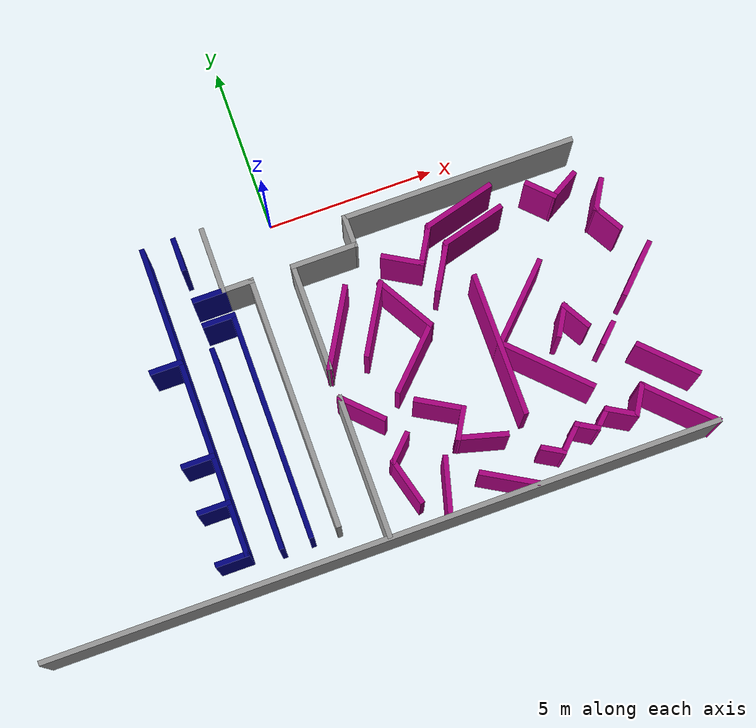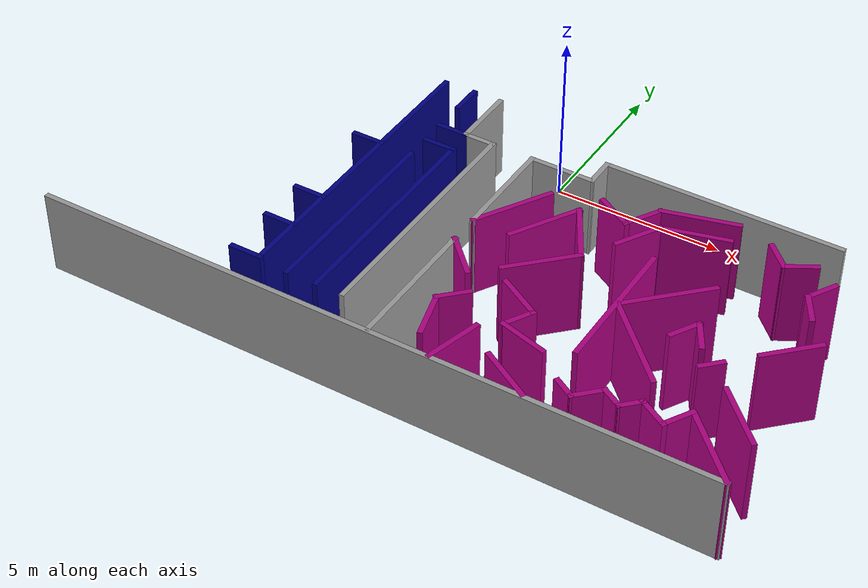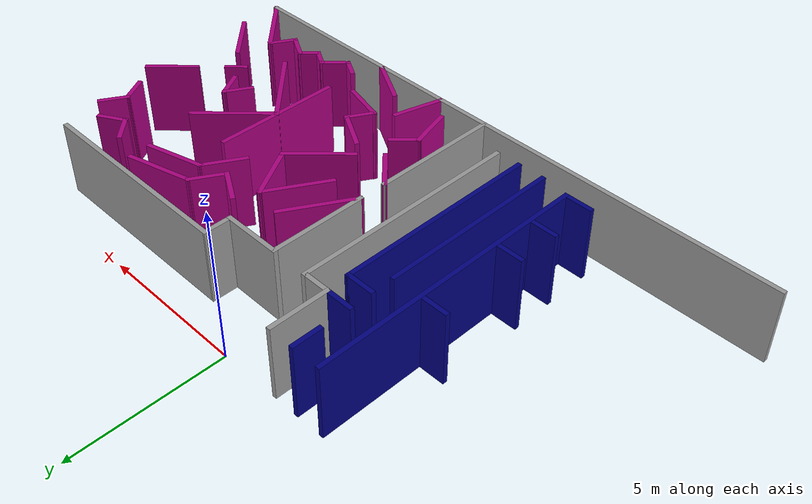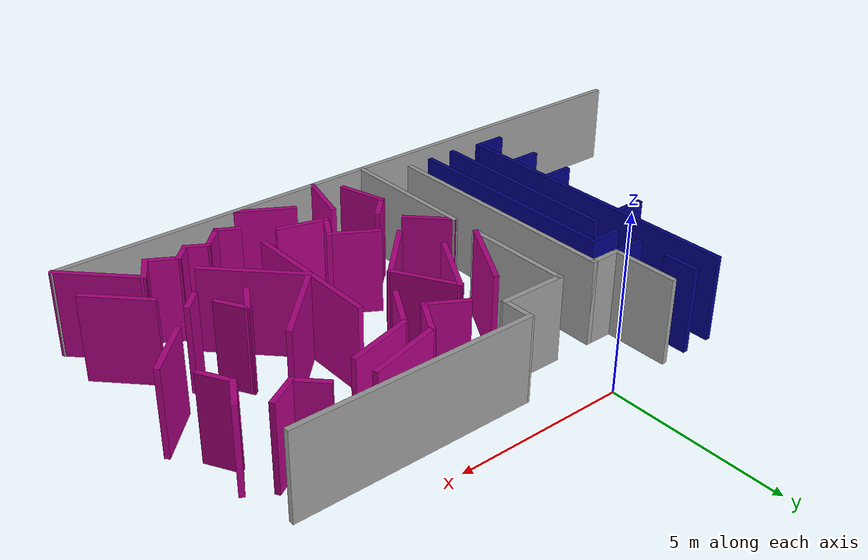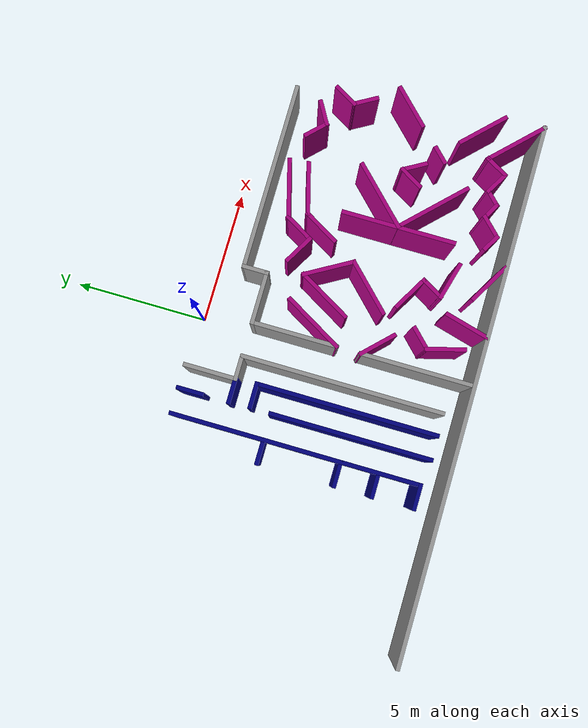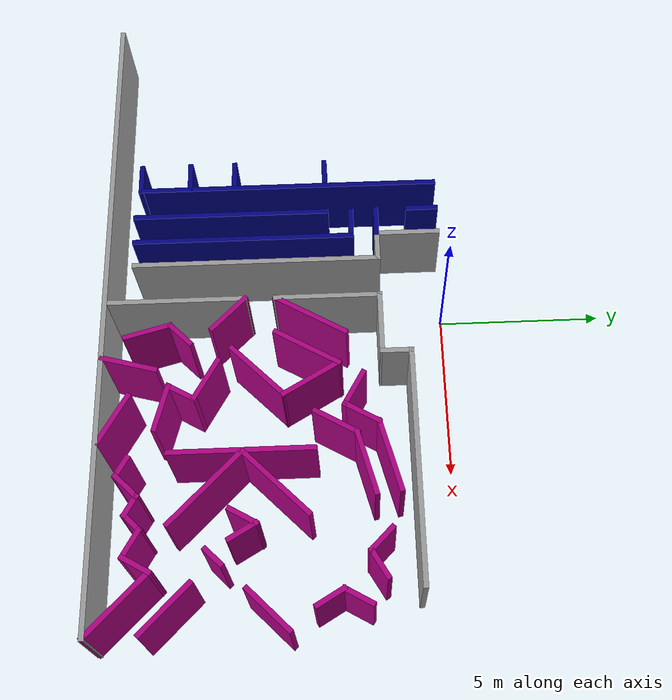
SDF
<sdf version="1.7">
 <model name="labyrinthe-backup">
  <pose>-0.042647 -0.217764 0 0 -0 0</pose>
  <link name="Wall_124">
   <collision name="Wall_124_Collision">
    <geometry><box><size>1 0.15 2.5</size></box></geometry>
    <pose>0 0 1.25 0 -0 0</pose>
   </collision>
   <visual name="Wall_124_Visual">
    <pose>0 0 1.25 0 -0 0</pose>
    <geometry><box><size>1 0.15 2.5</size></box></geometry>
    <material>
     <script><uri>file://media/materials/scripts/gazebo.material</uri><name>Gazebo/Grey</name></script>
     <ambient>0 0 0.498039 1</ambient>
    </material>
    <meta><layer>0</layer></meta>
   </visual>
   <pose>-2.78376 -0.311268 0 0 -0 -1.5708</pose>
  </link>
  <link name="Wall_134">
   <collision name="Wall_134_Collision">
    <geometry><box><size>9.25 0.15 2.5</size></box></geometry>
    <pose>0 0 1.25 0 -0 0</pose>
   </collision>
   <visual name="Wall_134_Visual">
    <pose>0 0 1.25 0 -0 0</pose>
    <geometry><box><size>9.25 0.15 2.5</size></box></geometry>
    <material>
     <script><uri>file://media/materials/scripts/gazebo.material</uri><name>Gazebo/Grey</name></script>
     <ambient>0 0 0.498039 1</ambient>
    </material>
    <meta><layer>0</layer></meta>
   </visual>
   <pose>-3.71826 -4.45266 0 0 -0 -1.5708</pose>
  </link>
  <link name="Wall_138">
   <collision name="Wall_138_Collision">
    <geometry><box><size>1 0.15 2.5</size></box></geometry>
    <pose>0 0 1.25 0 -0 0</pose>
   </collision>
   <visual name="Wall_138_Visual">
    <pose>0 0 1.25 0 -0 0</pose>
    <geometry><box><size>1 0.15 2.5</size></box></geometry>
    <material>
     <script><uri>file://media/materials/scripts/gazebo.material</uri><name>Gazebo/Grey</name></script>
     <ambient>0 0 0.498039 1</ambient>
    </material>
    <meta><layer>0</layer></meta>
   </visual>
   <pose>-2.35877 -1.73627 0 0 -0 3.14159</pose>
  </link>
  <link name="Wall_140">
   <collision name="Wall_140_Collision">
    <geometry><box><size>1 0.15 2.5</size></box></geometry>
    <pose>0 0 1.25 0 -0 0</pose>
   </collision>
   <visual name="Wall_140_Visual">
    <pose>0 0 1.25 0 -0 0</pose>
    <geometry><box><size>1 0.15 2.5</size></box></geometry>
    <material>
     <script><uri>file://media/materials/scripts/gazebo.material</uri><name>Gazebo/Grey</name></script>
     <ambient>0 0 0.498039 1</ambient>
    </material>
    <meta><layer>0</layer></meta>
   </visual>
   <pose>-2.31461 -2.50799 0 0 -0 0</pose>
  </link>
  <link name="Wall_141">
   <collision name="Wall_141_Collision">
    <geometry><box><size>6.75 0.15 2.5</size></box></geometry>
    <pose>0 0 1.25 0 -0 0</pose>
   </collision>
   <visual name="Wall_141_Visual">
    <pose>0 0 1.25 0 -0 0</pose>
    <geometry><box><size>6.75 0.15 2.5</size></box></geometry>
    <material>
     <script><uri>file://media/materials/scripts/gazebo.material</uri><name>Gazebo/Grey</name></script>
     <ambient>0 0 0.498039 1</ambient>
    </material>
    <meta><layer>0</layer></meta>
   </visual>
   <pose>-1.88961 -5.80799 0 0 -0 -1.5708</pose>
  </link>
  <link name="Wall_143">
   <collision name="Wall_143_Collision">
    <geometry><box><size>6 0.15 2.5</size></box></geometry>
    <pose>0 0 1.25 0 -0 0</pose>
   </collision>
   <visual name="Wall_143_Visual">
    <pose>0 0 1.25 0 -0 0</pose>
    <geometry><box><size>6 0.15 2.5</size></box></geometry>
    <material>
     <script><uri>file://media/materials/scripts/gazebo.material</uri><name>Gazebo/Grey</name></script>
     <ambient>0 0 0.498039 1</ambient>
    </material>
    <meta><layer>0</layer></meta>
   </visual>
   <pose>-2.76606 -6.20004 0 0 -0 -1.5708</pose>
  </link>
  <link name="Wall_154">
   <collision name="Wall_154_Collision">
    <geometry><box><size>1 0.15 2.5</size></box></geometry>
    <pose>0 0 1.25 0 -0 0</pose>
   </collision>
   <visual name="Wall_154_Visual">
    <pose>0 0 1.25 0 -0 0</pose>
    <geometry><box><size>1 0.15 2.5</size></box></geometry>
    <material>
     <script><uri>file://media/materials/scripts/gazebo.material</uri><name>Gazebo/Grey</name></script>
     <ambient>0 0 0.498039 1</ambient>
    </material>
    <meta><layer>0</layer></meta>
   </visual>
   <pose>-4.14326 -3.28826 0 0 -0 3.14159</pose>
  </link>
  <link name="Wall_162">
   <collision name="Wall_162_Collision">
    <geometry><box><size>1 0.15 2.5</size></box></geometry>
    <pose>0 0 1.25 0 -0 0</pose>
   </collision>
   <visual name="Wall_162_Visual">
    <pose>0 0 1.25 0 -0 0</pose>
    <geometry><box><size>1 0.15 2.5</size></box></geometry>
    <material>
     <script><uri>file://media/materials/scripts/gazebo.material</uri><name>Gazebo/Grey</name></script>
     <ambient>0 0 0.498039 1</ambient>
    </material>
    <meta><layer>0</layer></meta>
   </visual>
   <pose>-4.15649 -6.10519 0 0 -0 3.14159</pose>
  </link>
  <link name="Wall_167">
   <collision name="Wall_167_Collision">
    <geometry><box><size>1 0.15 2.5</size></box></geometry>
    <pose>0 0 1.25 0 -0 0</pose>
   </collision>
   <visual name="Wall_167_Visual">
    <pose>0 0 1.25 0 -0 0</pose>
    <geometry><box><size>1 0.15 2.5</size></box></geometry>
    <material>
     <script><uri>file://media/materials/scripts/gazebo.material</uri><name>Gazebo/Grey</name></script>
     <ambient>0 0 0.498039 1</ambient>
    </material>
    <meta><layer>0</layer></meta>
   </visual>
   <pose>-4.15649 -7.48059 0 0 -0 3.14159</pose>
  </link>
  <link name="Wall_17">
   <collision name="Wall_17_Collision">
    <geometry><box><size>20 0.15 2.5</size></box></geometry>
    <pose>0 0 1.25 0 -0 0</pose>
   </collision>
   <visual name="Wall_17_Visual">
    <pose>0 0 1.25 0 -0 0</pose>
    <geometry><box><size>20 0.15 2.5</size></box></geometry>
    <material>
     <script><uri>file://media/materials/scripts/gazebo.material</uri><name>Gazebo/Grey</name></script>
     <ambient>0 0 0 1</ambient>
    </material>
    <meta><layer>0</layer></meta>
   </visual>
   <pose>-0.030043 -9.90947 0 0 -0 3.14159</pose>
  </link>
  <link name="Wall_171">
   <collision name="Wall_171_Collision">
    <geometry><box><size>1 0.15 2.5</size></box></geometry>
    <pose>0 0 1.25 0 -0 0</pose>
   </collision>
   <visual name="Wall_171_Visual">
    <pose>0 0 1.25 0 -0 0</pose>
    <geometry><box><size>1 0.15 2.5</size></box></geometry>
    <material>
     <script><uri>file://media/materials/scripts/gazebo.material</uri><name>Gazebo/Grey</name></script>
     <ambient>0 0 0.498039 1</ambient>
    </material>
    <meta><layer>0</layer></meta>
   </visual>
   <pose>-4.14326 -9.00266 0 0 -0 3.14159</pose>
  </link>
  <link name="Wall_199">
   <collision name="Wall_199_Collision">
    <geometry><box><size>3.25 0.15 2.5</size></box></geometry>
    <pose>0 0 1.25 0 -0 0</pose>
   </collision>
   <visual name="Wall_199_Visual">
    <pose>0 0 1.25 0 -0 0</pose>
    <geometry><box><size>3.25 0.15 2.5</size></box></geometry>
    <material>
     <script><uri>file://media/materials/scripts/gazebo.material</uri><name>Gazebo/Grey</name></script>
     <ambient>0 0 0 1</ambient>
    </material>
    <meta><layer>0</layer></meta>
   </visual>
   <pose>0.166235 -3.28624 0 0 -0 -1.5708</pose>
  </link>
  <link name="Wall_201">
   <collision name="Wall_201_Collision">
    <geometry><box><size>4.25 0.15 2.5</size></box></geometry>
    <pose>0 0 1.25 0 -0 0</pose>
   </collision>
   <visual name="Wall_201_Visual">
    <pose>0 0 1.25 0 -0 0</pose>
    <geometry><box><size>4.25 0.15 2.5</size></box></geometry>
    <material>
     <script><uri>file://media/materials/scripts/gazebo.material</uri><name>Gazebo/Grey</name></script>
     <ambient>0 0 0 1</ambient>
    </material>
    <meta><layer>0</layer></meta>
   </visual>
   <pose>0.156663 -7.79811 0 0 -0 -1.5708</pose>
  </link>
  <link name="Wall_203">
   <collision name="Wall_203_Collision">
    <geometry><box><size>2.5 0.15 2.5</size></box></geometry>
    <pose>0 0 1.25 0 -0 0</pose>
   </collision>
   <visual name="Wall_203_Visual">
    <pose>0 0 1.25 0 -0 0</pose>
    <geometry><box><size>2.5 0.15 2.5</size></box></geometry>
    <material>
     <script><uri>file://media/materials/scripts/gazebo.material</uri><name>Gazebo/Grey</name></script>
     <ambient>0.666667 0 0.498039 1</ambient>
    </material>
    <meta><layer>0</layer></meta>
   </visual>
   <pose>0.753735 -3.81866 0 0 -0 1.0472</pose>
  </link>
  <link name="Wall_205">
   <collision name="Wall_205_Collision">
    <geometry><box><size>1.5 0.15 2.5</size></box></geometry>
    <pose>0 0 1.25 0 -0 0</pose>
   </collision>
   <visual name="Wall_205_Visual">
    <pose>0 0 1.25 0 -0 0</pose>
    <geometry><box><size>1.5 0.15 2.5</size></box></geometry>
    <material>
     <script><uri>file://media/materials/scripts/gazebo.material</uri><name>Gazebo/Grey</name></script>
     <ambient>0.666667 0 0.498039 1</ambient>
    </material>
    <meta><layer>0</layer></meta>
   </visual>
   <pose>0.63396 -6.22541 0 0 -0 -0.785398</pose>
  </link>
  <link name="Wall_207">
   <collision name="Wall_207_Collision">
    <geometry><box><size>2.25 0.15 2.5</size></box></geometry>
    <pose>0 0 1.25 0 -0 0</pose>
   </collision>
   <visual name="Wall_207_Visual">
    <pose>0 0 1.25 0 -0 0</pose>
    <geometry><box><size>2.25 0.15 2.5</size></box></geometry>
    <material>
     <script><uri>file://media/materials/scripts/gazebo.material</uri><name>Gazebo/Grey</name></script>
     <ambient>0.666667 0 0.498039 1</ambient>
    </material>
    <meta><layer>0</layer></meta>
   </visual>
   <pose>1.80579 -3.92626 0 0 -0 1.0472</pose>
  </link>
  <link name="Wall_208">
   <collision name="Wall_208_Collision">
    <geometry><box><size>2 0.15 2.5</size></box></geometry>
    <pose>0 0 1.25 0 -0 0</pose>
   </collision>
   <visual name="Wall_208_Visual">
    <pose>0 0 1.25 0 -0 0</pose>
    <geometry><box><size>2 0.15 2.5</size></box></geometry>
    <material>
     <script><uri>file://media/materials/scripts/gazebo.material</uri><name>Gazebo/Grey</name></script>
     <ambient>0.666667 0 0.498039 1</ambient>
    </material>
    <meta><layer>0</layer></meta>
   </visual>
   <pose>2.79329 -3.81801 0 0 -0 -1.0472</pose>
  </link>
  <link name="Wall_209">
   <collision name="Wall_209_Collision">
    <geometry><box><size>2.25 0.15 2.5</size></box></geometry>
    <pose>0 0 1.25 0 -0 0</pose>
   </collision>
   <visual name="Wall_209_Visual">
    <pose>0 0 1.25 0 -0 0</pose>
    <geometry><box><size>2.25 0.15 2.5</size></box></geometry>
    <material>
     <script><uri>file://media/materials/scripts/gazebo.material</uri><name>Gazebo/Grey</name></script>
     <ambient>0.666667 0 0.498039 1</ambient>
    </material>
    <meta><layer>0</layer></meta>
   </visual>
   <pose>2.51333 -5.36154 0 0 -0 -2.35619</pose>
  </link>
  <link name="Wall_211">
   <collision name="Wall_211_Collision">
    <geometry><box><size>1.25 0.15 2.5</size></box></geometry>
    <pose>0 0 1.25 0 -0 0</pose>
   </collision>
   <visual name="Wall_211_Visual">
    <pose>0 0 1.25 0 -0 0</pose>
    <geometry><box><size>1.25 0.15 2.5</size></box></geometry>
    <material>
     <script><uri>file://media/materials/scripts/gazebo.material</uri><name>Gazebo/Grey</name></script>
     <ambient>0.666667 0 0.498039 1</ambient>
    </material>
    <meta><layer>0</layer></meta>
   </visual>
   <pose>3.14573 -2.59784 0 0 -0 -0.523599</pose>
  </link>
  <link name="Wall_212">
   <collision name="Wall_212_Collision">
    <geometry><box><size>1.25 0.15 2.5</size></box></geometry>
    <pose>0 0 1.25 0 -0 0</pose>
   </collision>
   <visual name="Wall_212_Visual">
    <pose>0 0 1.25 0 -0 0</pose>
    <geometry><box><size>1.25 0.15 2.5</size></box></geometry>
    <material>
     <script><uri>file://media/materials/scripts/gazebo.material</uri><name>Gazebo/Grey</name></script>
     <ambient>0.666667 0 0.498039 1</ambient>
    </material>
    <meta><layer>0</layer></meta>
   </visual>
   <pose>3.89704 -2.39652 0 0 -0 1.0472</pose>
  </link>
  <link name="Wall_213">
   <collision name="Wall_213_Collision">
    <geometry><box><size>2.25 0.15 2.5</size></box></geometry>
    <pose>0 0 1.25 0 -0 0</pose>
   </collision>
   <visual name="Wall_213_Visual">
    <pose>0 0 1.25 0 -0 0</pose>
    <geometry><box><size>2.25 0.15 2.5</size></box></geometry>
    <material>
     <script><uri>file://media/materials/scripts/gazebo.material</uri><name>Gazebo/Grey</name></script>
     <ambient>0.666667 0 0.498039 1</ambient>
    </material>
    <meta><layer>0</layer></meta>
   </visual>
   <pose>5.18626 -1.64845 0 0 -0 0.261799</pose>
  </link>
  <link name="Wall_215">
   <collision name="Wall_215_Collision">
    <geometry><box><size>1.5 0.15 2.5</size></box></geometry>
    <pose>0 0 1.25 0 -0 0</pose>
   </collision>
   <visual name="Wall_215_Visual">
    <pose>0 0 1.25 0 -0 0</pose>
    <geometry><box><size>1.5 0.15 2.5</size></box></geometry>
    <material>
     <script><uri>file://media/materials/scripts/gazebo.material</uri><name>Gazebo/Grey</name></script>
     <ambient>0.666667 0 0.498039 1</ambient>
    </material>
    <meta><layer>0</layer></meta>
   </visual>
   <pose>4.14426 -3.14012 0 0 -0 1.0472</pose>
  </link>
  <link name="Wall_216">
   <collision name="Wall_216_Collision">
    <geometry><box><size>2 0.15 2.5</size></box></geometry>
    <pose>0 0 1.25 0 -0 0</pose>
   </collision>
   <visual name="Wall_216_Visual">
    <pose>0 0 1.25 0 -0 0</pose>
    <geometry><box><size>2 0.15 2.5</size></box></geometry>
    <material>
     <script><uri>file://media/materials/scripts/gazebo.material</uri><name>Gazebo/Grey</name></script>
     <ambient>0.666667 0 0.498039 1</ambient>
    </material>
    <meta><layer>0</layer></meta>
   </visual>
   <pose>5.37524 -2.31615 0 0 -0 0.261799</pose>
  </link>
  <link name="Wall_218">
   <collision name="Wall_218_Collision">
    <geometry><box><size>1 0.15 2.5</size></box></geometry>
    <pose>0 0 1.25 0 -0 0</pose>
   </collision>
   <visual name="Wall_218_Visual">
    <pose>0 0 1.25 0 -0 0</pose>
    <geometry><box><size>1 0.15 2.5</size></box></geometry>
    <material>
     <script><uri>file://media/materials/scripts/gazebo.material</uri><name>Gazebo/Grey</name></script>
     <ambient>0.666667 0 0.498039 1</ambient>
    </material>
    <meta><layer>0</layer></meta>
   </visual>
   <pose>7.55901 -1.98856 0 0 -0 -0.785398</pose>
  </link>
  <link name="Wall_219">
   <collision name="Wall_219_Collision">
    <geometry><box><size>1 0.15 2.5</size></box></geometry>
    <pose>0 0 1.25 0 -0 0</pose>
   </collision>
   <visual name="Wall_219_Visual">
    <pose>0 0 1.25 0 -0 0</pose>
    <geometry><box><size>1 0.15 2.5</size></box></geometry>
    <material>
     <script><uri>file://media/materials/scripts/gazebo.material</uri><name>Gazebo/Grey</name></script>
     <ambient>0.666667 0 0.498039 1</ambient>
    </material>
    <meta><layer>0</layer></meta>
   </visual>
   <pose>8.22759 -2.07658 0 0 -0 0.523599</pose>
  </link>
  <link name="Wall_221">
   <collision name="Wall_221_Collision">
    <geometry><box><size>1 0.15 2.5</size></box></geometry>
    <pose>0 0 1.25 0 -0 0</pose>
   </collision>
   <visual name="Wall_221_Visual">
    <pose>0 0 1.25 0 -0 0</pose>
    <geometry><box><size>1 0.15 2.5</size></box></geometry>
    <material>
     <script><uri>file://media/materials/scripts/gazebo.material</uri><name>Gazebo/Grey</name></script>
     <ambient>0.666667 0 0.498039 1</ambient>
    </material>
    <meta><layer>0</layer></meta>
   </visual>
   <pose>9.06941 -2.67767 0 0 -0 -2.0944</pose>
  </link>
  <link name="Wall_222">
   <collision name="Wall_222_Collision">
    <geometry><box><size>1 0.15 2.5</size></box></geometry>
    <pose>0 0 1.25 0 -0 0</pose>
   </collision>
   <visual name="Wall_222_Visual">
    <pose>0 0 1.25 0 -0 0</pose>
    <geometry><box><size>1 0.15 2.5</size></box></geometry>
    <material>
     <script><uri>file://media/materials/scripts/gazebo.material</uri><name>Gazebo/Grey</name></script>
     <ambient>0.666667 0 0.498039 1</ambient>
    </material>
    <meta><layer>0</layer></meta>
   </visual>
   <pose>9.06941 -3.41379 0 0 -0 -1.0472</pose>
  </link>
  <link name="Wall_224">
   <collision name="Wall_224_Collision">
    <geometry><box><size>1.5 0.15 2.5</size></box></geometry>
    <pose>0 0 1.25 0 -0 0</pose>
   </collision>
   <visual name="Wall_224_Visual">
    <pose>0 0 1.25 0 -0 0</pose>
    <geometry><box><size>1.5 0.15 2.5</size></box></geometry>
    <material>
     <script><uri>file://media/materials/scripts/gazebo.material</uri><name>Gazebo/Grey</name></script>
     <ambient>0.666667 0 0.498039 1</ambient>
    </material>
    <meta><layer>0</layer></meta>
   </visual>
   <pose>2.72498 -6.85266 0 0 -0 -0.523599</pose>
  </link>
  <link name="Wall_225">
   <collision name="Wall_225_Collision">
    <geometry><box><size>1 0.15 2.5</size></box></geometry>
    <pose>0 0 1.25 0 -0 0</pose>
   </collision>
   <visual name="Wall_225_Visual">
    <pose>0 0 1.25 0 -0 0</pose>
    <geometry><box><size>1 0.15 2.5</size></box></geometry>
    <material>
     <script><uri>file://media/materials/scripts/gazebo.material</uri><name>Gazebo/Grey</name></script>
     <ambient>0.666667 0 0.498039 1</ambient>
    </material>
    <meta><layer>0</layer></meta>
   </visual>
   <pose>3.09705 -7.55822 0 0 -0 -2.0944</pose>
  </link>
  <link name="Wall_226">
   <collision name="Wall_226_Collision">
    <geometry><box><size>1.5 0.15 2.5</size></box></geometry>
    <pose>0 0 1.25 0 -0 0</pose>
   </collision>
   <visual name="Wall_226_Visual">
    <pose>0 0 1.25 0 -0 0</pose>
    <geometry><box><size>1.5 0.15 2.5</size></box></geometry>
    <material>
     <script><uri>file://media/materials/scripts/gazebo.material</uri><name>Gazebo/Grey</name></script>
     <ambient>0.666667 0 0.498039 1</ambient>
    </material>
    <meta><layer>0</layer></meta>
   </visual>
   <pose>3.53655 -8.10099 0 0 -0 -0.261799</pose>
  </link>
  <link name="Wall_228">
   <collision name="Wall_228_Collision">
    <geometry><box><size>1 0.15 2.5</size></box></geometry>
    <pose>0 0 1.25 0 -0 0</pose>
   </collision>
   <visual name="Wall_228_Visual">
    <pose>0 0 1.25 0 -0 0</pose>
    <geometry><box><size>1 0.15 2.5</size></box></geometry>
    <material>
     <script><uri>file://media/materials/scripts/gazebo.material</uri><name>Gazebo/Grey</name></script>
     <ambient>0.666667 0 0.498039 1</ambient>
    </material>
    <meta><layer>0</layer></meta>
   </visual>
   <pose>1.25799 -7.63563 0 0 -0 -2.35619</pose>
  </link>
  <link name="Wall_229">
   <collision name="Wall_229_Collision">
    <geometry><box><size>1.5 0.15 2.5</size></box></geometry>
    <pose>0 0 1.25 0 -0 0</pose>
   </collision>
   <visual name="Wall_229_Visual">
    <pose>0 0 1.25 0 -0 0</pose>
    <geometry><box><size>1.5 0.15 2.5</size></box></geometry>
    <material>
     <script><uri>file://media/materials/scripts/gazebo.material</uri><name>Gazebo/Grey</name></script>
     <ambient>0.666667 0 0.498039 1</ambient>
    </material>
    <meta><layer>0</layer></meta>
   </visual>
   <pose>1.13217 -8.58815 0 0 -0 -1.309</pose>
  </link>
  <link name="Wall_231">
   <collision name="Wall_231_Collision">
    <geometry><box><size>1.75 0.15 2.5</size></box></geometry>
    <pose>0 0 1.25 0 -0 0</pose>
   </collision>
   <visual name="Wall_231_Visual">
    <pose>0 0 1.25 0 -0 0</pose>
    <geometry><box><size>1.75 0.15 2.5</size></box></geometry>
    <material>
     <script><uri>file://media/materials/scripts/gazebo.material</uri><name>Gazebo/Grey</name></script>
     <ambient>0.666667 0 0.498039 1</ambient>
    </material>
    <meta><layer>0</layer></meta>
   </visual>
   <pose>2.14909 -9.10157 0 0 -0 1.309</pose>
  </link>
  <link name="Wall_233">
   <collision name="Wall_233_Collision">
    <geometry><box><size>1.75 0.15 2.5</size></box></geometry>
    <pose>0 0 1.25 0 -0 0</pose>
   </collision>
   <visual name="Wall_233_Visual">
    <pose>0 0 1.25 0 -0 0</pose>
    <geometry><box><size>1.75 0.15 2.5</size></box></geometry>
    <material>
     <script><uri>file://media/materials/scripts/gazebo.material</uri><name>Gazebo/Grey</name></script>
     <ambient>0.666667 0 0.498039 1</ambient>
    </material>
    <meta><layer>0</layer></meta>
   </visual>
   <pose>3.84132 -9.46109 0 0 -0 2.61799</pose>
  </link>
  <link name="Wall_235">
   <collision name="Wall_235_Collision">
    <geometry><box><size>2.5 0.15 2.5</size></box></geometry>
    <pose>0 0 1.25 0 -0 0</pose>
   </collision>
   <visual name="Wall_235_Visual">
    <pose>0 0 1.25 0 -0 0</pose>
    <geometry><box><size>2.5 0.15 2.5</size></box></geometry>
    <material>
     <script><uri>file://media/materials/scripts/gazebo.material</uri><name>Gazebo/Grey</name></script>
     <ambient>0.666667 0 0.498039 1</ambient>
    </material>
    <meta><layer>0</layer></meta>
   </visual>
   <pose>9.06411 -9.07862 0 0 -0 2.35619</pose>
  </link>
  <link name="Wall_236">
   <collision name="Wall_236_Collision">
    <geometry><box><size>1 0.15 2.5</size></box></geometry>
    <pose>0 0 1.25 0 -0 0</pose>
   </collision>
   <visual name="Wall_236_Visual">
    <pose>0 0 1.25 0 -0 0</pose>
    <geometry><box><size>1 0.15 2.5</size></box></geometry>
    <material>
     <script><uri>file://media/materials/scripts/gazebo.material</uri><name>Gazebo/Grey</name></script>
     <ambient>0.666667 0 0.498039 1</ambient>
    </material>
    <meta><layer>0</layer></meta>
   </visual>
   <pose>8.02076 -8.61583 0 0 -0 -2.0944</pose>
  </link>
  <link name="Wall_237">
   <collision name="Wall_237_Collision">
    <geometry><box><size>1 0.15 2.5</size></box></geometry>
    <pose>0 0 1.25 0 -0 0</pose>
   </collision>
   <visual name="Wall_237_Visual">
    <pose>0 0 1.25 0 -0 0</pose>
    <geometry><box><size>1 0.15 2.5</size></box></geometry>
    <material>
     <script><uri>file://media/materials/scripts/gazebo.material</uri><name>Gazebo/Grey</name></script>
     <ambient>0.666667 0 0.498039 1</ambient>
    </material>
    <meta><layer>0</layer></meta>
   </visual>
   <pose>7.4402 -8.77139 0 0 -0 2.61799</pose>
  </link>
  <link name="Wall_238">
   <collision name="Wall_238_Collision">
    <geometry><box><size>0.75 0.15 2.5</size></box></geometry>
    <pose>0 0 1.25 0 -0 0</pose>
   </collision>
   <visual name="Wall_238_Visual">
    <pose>0 0 1.25 0 -0 0</pose>
    <geometry><box><size>0.75 0.15 2.5</size></box></geometry>
    <material>
     <script><uri>file://media/materials/scripts/gazebo.material</uri><name>Gazebo/Grey</name></script>
     <ambient>0.666667 0 0.498039 1</ambient>
    </material>
    <meta><layer>0</layer></meta>
   </visual>
   <pose>6.86 -8.77102 0 0 -0 -2.35619</pose>
  </link>
  <link name="Wall_239">
   <collision name="Wall_239_Collision">
    <geometry><box><size>0.75 0.15 2.5</size></box></geometry>
    <pose>0 0 1.25 0 -0 0</pose>
   </collision>
   <visual name="Wall_239_Visual">
    <pose>0 0 1.25 0 -0 0</pose>
    <geometry><box><size>0.75 0.15 2.5</size></box></geometry>
    <material>
     <script><uri>file://media/materials/scripts/gazebo.material</uri><name>Gazebo/Grey</name></script>
     <ambient>0.666667 0 0.498039 1</ambient>
    </material>
    <meta><layer>0</layer></meta>
   </visual>
   <pose>6.38806 -8.83315 0 0 -0 2.61799</pose>
  </link>
  <link name="Wall_240">
   <collision name="Wall_240_Collision">
    <geometry><box><size>1 0.15 2.5</size></box></geometry>
    <pose>0 0 1.25 0 -0 0</pose>
   </collision>
   <visual name="Wall_240_Visual">
    <pose>0 0 1.25 0 -0 0</pose>
    <geometry><box><size>1 0.15 2.5</size></box></geometry>
    <material>
     <script><uri>file://media/materials/scripts/gazebo.material</uri><name>Gazebo/Grey</name></script>
     <ambient>0.666667 0 0.498039 1</ambient>
    </material>
    <meta><layer>0</layer></meta>
   </visual>
   <pose>5.82773 -8.98367 0 0 -0 -2.35619</pose>
  </link>
  <link name="Wall_241">
   <collision name="Wall_241_Collision">
    <geometry><box><size>0.75 0.15 2.5</size></box></geometry>
    <pose>0 0 1.25 0 -0 0</pose>
   </collision>
   <visual name="Wall_241_Visual">
    <pose>0 0 1.25 0 -0 0</pose>
    <geometry><box><size>0.75 0.15 2.5</size></box></geometry>
    <material>
     <script><uri>file://media/materials/scripts/gazebo.material</uri><name>Gazebo/Grey</name></script>
     <ambient>0.666667 0 0.498039 1</ambient>
    </material>
    <meta><layer>0</layer></meta>
   </visual>
   <pose>5.26741 -9.13419 0 0 -0 2.61799</pose>
  </link>
  <link name="Wall_243">
   <collision name="Wall_243_Collision">
    <geometry><box><size>1.75 0.15 2.5</size></box></geometry>
    <pose>0 0 1.25 0 -0 0</pose>
   </collision>
   <visual name="Wall_243_Visual">
    <pose>0 0 1.25 0 -0 0</pose>
    <geometry><box><size>1.75 0.15 2.5</size></box></geometry>
    <material>
     <script><uri>file://media/materials/scripts/gazebo.material</uri><name>Gazebo/Grey</name></script>
     <ambient>0.666667 0 0.498039 1</ambient>
    </material>
    <meta><layer>0</layer></meta>
   </visual>
   <pose>9.32458 -5.07065 0 0 -0 -2.35619</pose>
  </link>
  <link name="Wall_245">
   <collision name="Wall_245_Collision">
    <geometry><box><size>2 0.15 2.5</size></box></geometry>
    <pose>0 0 1.25 0 -0 0</pose>
   </collision>
   <visual name="Wall_245_Visual">
    <pose>0 0 1.25 0 -0 0</pose>
    <geometry><box><size>2 0.15 2.5</size></box></geometry>
    <material>
     <script><uri>file://media/materials/scripts/gazebo.material</uri><name>Gazebo/Grey</name></script>
     <ambient>0.666667 0 0.498039 1</ambient>
    </material>
    <meta><layer>0</layer></meta>
   </visual>
   <pose>9.20974 -7.79194 0 0 -0 2.35619</pose>
  </link>
  <link name="Wall_247">
   <collision name="Wall_247_Collision">
    <geometry><box><size>4.25 0.15 2.5</size></box></geometry>
    <pose>0 0 1.25 0 -0 0</pose>
   </collision>
   <visual name="Wall_247_Visual">
    <pose>0 0 1.25 0 -0 0</pose>
    <geometry><box><size>4.25 0.15 2.5</size></box></geometry>
    <material>
     <script><uri>file://media/materials/scripts/gazebo.material</uri><name>Gazebo/Grey</name></script>
     <ambient>0.666667 0 0.498039 1</ambient>
    </material>
    <meta><layer>0</layer></meta>
   </visual>
   <pose>4.90444 -5.81436 0 0 -0 -1.5708</pose>
  </link>
  <link name="Wall_249">
   <collision name="Wall_249_Collision">
    <geometry><box><size>2.75 0.15 2.5</size></box></geometry>
    <pose>0 0 1.25 0 -0 0</pose>
   </collision>
   <visual name="Wall_249_Visual">
    <pose>0 0 1.25 0 -0 0</pose>
    <geometry><box><size>2.75 0.15 2.5</size></box></geometry>
    <material>
     <script><uri>file://media/materials/scripts/gazebo.material</uri><name>Gazebo/Grey</name></script>
     <ambient>0.666667 0 0.498039 1</ambient>
    </material>
    <meta><layer>0</layer></meta>
   </visual>
   <pose>5.85013 -4.86855 0 0 -0 0.785398</pose>
  </link>
  <link name="Wall_251">
   <collision name="Wall_251_Collision">
    <geometry><box><size>3 0.15 2.5</size></box></geometry>
    <pose>0 0 1.25 0 -0 0</pose>
   </collision>
   <visual name="Wall_251_Visual">
    <pose>0 0 1.25 0 -0 0</pose>
    <geometry><box><size>3 0.15 2.5</size></box></geometry>
    <material>
     <script><uri>file://media/materials/scripts/gazebo.material</uri><name>Gazebo/Grey</name></script>
     <ambient>0.666667 0 0.498039 1</ambient>
    </material>
    <meta><layer>0</layer></meta>
   </visual>
   <pose>5.93851 -6.79542 0 0 -0 -0.785398</pose>
  </link>
  <link name="Wall_254">
   <collision name="Wall_254_Collision">
    <geometry><box><size>1 0.15 2.5</size></box></geometry>
    <pose>0 0 1.25 0 -0 0</pose>
   </collision>
   <visual name="Wall_254_Visual">
    <pose>0 0 1.25 0 -0 0</pose>
    <geometry><box><size>1 0.15 2.5</size></box></geometry>
    <material>
     <script><uri>file://media/materials/scripts/gazebo.material</uri><name>Gazebo/Grey</name></script>
     <ambient>0.666667 0 0.498039 1</ambient>
    </material>
    <meta><layer>0</layer></meta>
   </visual>
   <pose>6.78149 -5.7591 0 0 -0 -2.0944</pose>
  </link>
  <link name="Wall_256">
   <collision name="Wall_256_Collision">
    <geometry><box><size>1 0.15 2.5</size></box></geometry>
    <pose>0 0 1.25 0 -0 0</pose>
   </collision>
   <visual name="Wall_256_Visual">
    <pose>0 0 1.25 0 -0 0</pose>
    <geometry><box><size>1 0.15 2.5</size></box></geometry>
    <material>
     <script><uri>file://media/materials/scripts/gazebo.material</uri><name>Gazebo/Grey</name></script>
     <ambient>0.666667 0 0.498039 1</ambient>
    </material>
    <meta><layer>0</layer></meta>
   </visual>
   <pose>7.20649 -5.7591 0 0 -0 -1.0472</pose>
  </link>
  <link name="Wall_258">
   <collision name="Wall_258_Collision">
    <geometry><box><size>0.75 0.15 2.5</size></box></geometry>
    <pose>0 0 1.25 0 -0 0</pose>
   </collision>
   <visual name="Wall_258_Visual">
    <pose>0 0 1.25 0 -0 0</pose>
    <geometry><box><size>0.75 0.15 2.5</size></box></geometry>
    <material>
     <script><uri>file://media/materials/scripts/gazebo.material</uri><name>Gazebo/Grey</name></script>
     <ambient>0.666667 0 0.498039 1</ambient>
    </material>
    <meta><layer>0</layer></meta>
   </visual>
   <pose>7.87953 -6.54214 0 0 -0 -2.35619</pose>
  </link>
  <link name="Wall_32">
   <collision name="Wall_32_Collision">
    <geometry><box><size>1 0.15 2.5</size></box></geometry>
    <pose>0 0 1.25 0 -0 0</pose>
   </collision>
   <visual name="Wall_32_Visual">
    <pose>0 0 1.25 0 -0 0</pose>
    <geometry><box><size>1 0.15 2.5</size></box></geometry>
    <material>
     <script><uri>file://media/materials/scripts/gazebo.material</uri><name>Gazebo/Grey</name></script>
     <ambient>0 0 0 1</ambient>
    </material>
    <meta><layer>0</layer></meta>
   </visual>
   <pose>-1.50876 -1.73627 0 0 -0 0</pose>
  </link>
  <link name="Wall_38">
   <collision name="Wall_38_Collision">
    <geometry><box><size>2 0.15 2.5</size></box></geometry>
    <pose>0 0 1.25 0 -0 0</pose>
   </collision>
   <visual name="Wall_38_Visual">
    <pose>0 0 1.25 0 -0 0</pose>
    <geometry><box><size>2 0.15 2.5</size></box></geometry>
    <material>
     <script><uri>file://media/materials/scripts/gazebo.material</uri><name>Gazebo/Grey</name></script>
     <ambient>0 0 0 1</ambient>
    </material>
    <meta><layer>0</layer></meta>
   </visual>
   <pose>-1.93376 -0.811268 0 0 -0 1.5708</pose>
  </link>
  <link name="Wall_43">
   <collision name="Wall_43_Collision">
    <geometry><box><size>1 0.15 2.5</size></box></geometry>
    <pose>0 0 1.25 0 -0 0</pose>
   </collision>
   <visual name="Wall_43_Visual">
    <pose>0 0 1.25 0 -0 0</pose>
    <geometry><box><size>1 0.15 2.5</size></box></geometry>
    <material>
     <script><uri>file://media/materials/scripts/gazebo.material</uri><name>Gazebo/Grey</name></script>
     <ambient>0 0 0 1</ambient>
    </material>
    <meta><layer>0</layer></meta>
   </visual>
   <pose>2.01644 -1.31124 0 0 -0 1.57031</pose>
  </link>
  <link name="Wall_49">
   <collision name="Wall_49_Collision">
    <geometry><box><size>2 0.15 2.5</size></box></geometry>
    <pose>0 0 1.25 0 -0 0</pose>
   </collision>
   <visual name="Wall_49_Visual">
    <pose>0 0 1.25 0 -0 0</pose>
    <geometry><box><size>2 0.15 2.5</size></box></geometry>
    <material>
     <script><uri>file://media/materials/scripts/gazebo.material</uri><name>Gazebo/Grey</name></script>
     <ambient>0 0 0 1</ambient>
    </material>
    <meta><layer>0</layer></meta>
   </visual>
   <pose>1.09123 -1.73624 0 0 -0 3.14159</pose>
  </link>
  <link name="Wall_57">
   <collision name="Wall_57_Collision">
    <geometry><box><size>7.5 0.15 2.5</size></box></geometry>
    <pose>0 0 1.25 0 -0 0</pose>
   </collision>
   <visual name="Wall_57_Visual">
    <pose>0 0 1.25 0 -0 0</pose>
    <geometry><box><size>7.5 0.15 2.5</size></box></geometry>
    <material>
     <script><uri>file://media/materials/scripts/gazebo.material</uri><name>Gazebo/Grey</name></script>
     <ambient>0 0 0 1</ambient>
    </material>
    <meta><layer>0</layer></meta>
   </visual>
   <pose>-1.08377 -5.41127 0 0 -0 -1.5708</pose>
  </link>
  <link name="Wall_59">
   <collision name="Wall_59_Collision">
    <geometry><box><size>7 0.15 2.5</size></box></geometry>
    <pose>0 0 1.25 0 -0 0</pose>
   </collision>
   <visual name="Wall_59_Visual">
    <pose>0 0 1.25 0 -0 0</pose>
    <geometry><box><size>7 0.15 2.5</size></box></geometry>
    <material>
     <script><uri>file://media/materials/scripts/gazebo.material</uri><name>Gazebo/Grey</name></script>
     <ambient>0 0 0 1</ambient>
    </material>
    <meta><layer>0</layer></meta>
   </visual>
   <pose>5.44165 -0.886236 0 0 -0 0</pose>
  </link>
  <static>1</static>
 </model>
</sdf>
